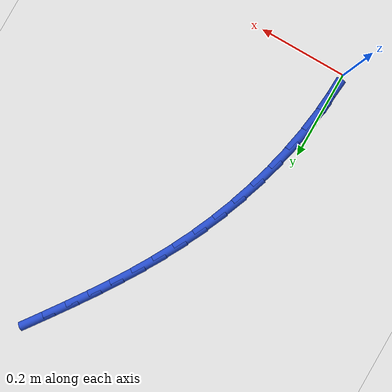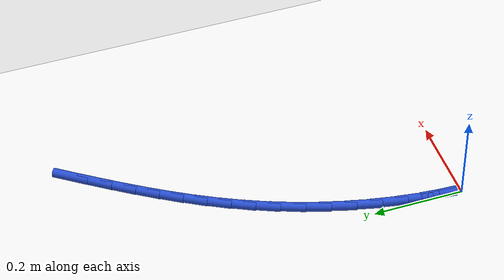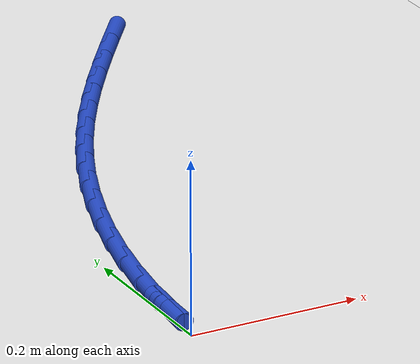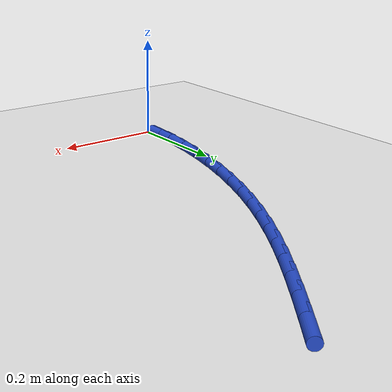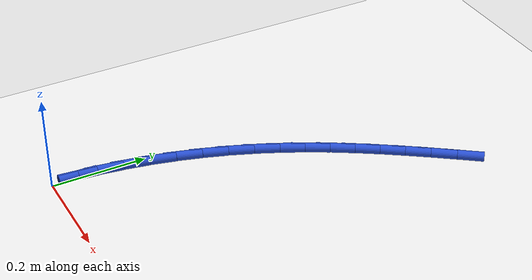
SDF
<sdf version="1.6">
 <world name="default">
  <model name="ground_plane">
   <static>1</static>
   <link name="link">
    <collision name="collision">
     <geometry><plane><normal>0 0 1</normal><size>100 100</size></plane></geometry>
     <surface><friction><ode><mu>100</mu><mu2>50</mu2></ode></friction></surface>
    </collision>
    <visual name="visual">
     <cast_shadows>0</cast_shadows>
     <geometry><plane><normal>0 0 1</normal><size>100 100</size></plane></geometry>
     <material>
      <script><uri>file://media/materials/scripts/gazebo.material</uri><name>Gazebo/WhiteGlow</name></script>
     </material>
    </visual>
   </link>
  </model>
  <model name="line">
   <link name="link_1">
    <pose>0.0022075486330669406 0.054341350520344396 0.01 0 1.57 1.4746755640071965</pose>
    <collision name="collision">
     <geometry><cylinder><radius>0.01</radius><length>0.08</length></cylinder></geometry>
    </collision>
    <visual name="visual">
     <material>
      <script><name>Gazebo/Blue</name><uri>file://media/materials/scripts/gazebo.material</uri></script>
     </material>
     <geometry><cylinder><radius>0.01</radius><length>0.08</length></cylinder></geometry>
    </visual>
   </link>
   <link name="link_2">
    <pose>0.007438938822848464 0.10859881599953379 0.01 0 1.57 1.422006612447328</pose>
    <collision name="collision">
     <geometry><cylinder><radius>0.01</radius><length>0.08</length></cylinder></geometry>
    </collision>
    <visual name="visual">
     <material>
      <script><name>Gazebo/Blue</name><uri>file://media/materials/scripts/gazebo.material</uri></script>
     </material>
     <geometry><cylinder><radius>0.01</radius><length>0.08</length></cylinder></geometry>
    </visual>
   </link>
   <link name="link_3">
    <pose>0.015526090274731199 0.1625500209821812 0.01 0 1.57 1.3717756762877462</pose>
    <collision name="collision">
     <geometry><cylinder><radius>0.01</radius><length>0.08</length></cylinder></geometry>
    </collision>
    <visual name="visual">
     <material>
      <script><name>Gazebo/Blue</name><uri>file://media/materials/scripts/gazebo.material</uri></script>
     </material>
     <geometry><cylinder><radius>0.01</radius><length>0.08</length></cylinder></geometry>
    </visual>
   </link>
   <link name="link_4">
    <pose>0.026300922694101798 0.2159725900128996 0.01 0 1.57 1.3235577637473384</pose>
    <collision name="collision">
     <geometry><cylinder><radius>0.01</radius><length>0.08</length></cylinder></geometry>
    </collision>
    <visual name="visual">
     <material>
      <script><name>Gazebo/Blue</name><uri>file://media/materials/scripts/gazebo.material</uri></script>
     </material>
     <geometry><cylinder><radius>0.01</radius><length>0.08</length></cylinder></geometry>
    </visual>
   </link>
   <link name="link_5">
    <pose>0.03959535578634695 0.2686441476363022 0.01 0 1.57 1.2769189393205005</pose>
    <collision name="collision">
     <geometry><cylinder><radius>0.01</radius><length>0.08</length></cylinder></geometry>
    </collision>
    <visual name="visual">
     <material>
      <script><name>Gazebo/Blue</name><uri>file://media/materials/scripts/gazebo.material</uri></script>
     </material>
     <geometry><cylinder><radius>0.01</radius><length>0.08</length></cylinder></geometry>
    </visual>
   </link>
   <link name="link_6">
    <pose>0.055241309256853305 0.32034231839700195 0.01 0 1.57 1.2314154283046022</pose>
    <collision name="collision">
     <geometry><cylinder><radius>0.01</radius><length>0.08</length></cylinder></geometry>
    </collision>
    <visual name="visual">
     <material>
      <script><name>Gazebo/Blue</name><uri>file://media/materials/scripts/gazebo.material</uri></script>
     </material>
     <geometry><cylinder><radius>0.01</radius><length>0.08</length></cylinder></geometry>
    </visual>
   </link>
   <link name="link_7">
    <pose>0.0730707028110075 0.3708447268396117 0.01 0 1.57 1.1865888610625632</pose>
    <collision name="collision">
     <geometry><cylinder><radius>0.01</radius><length>0.08</length></cylinder></geometry>
    </collision>
    <visual name="visual">
     <material>
      <script><name>Gazebo/Blue</name><uri>file://media/materials/scripts/gazebo.material</uri></script>
     </material>
     <geometry><cylinder><radius>0.01</radius><length>0.08</length></cylinder></geometry>
    </visual>
   </link>
   <link name="link_8">
    <pose>0.09291545615419627 0.4199289975087449 0.01 0 1.57 1.1421388670999895</pose>
    <collision name="collision">
     <geometry><cylinder><radius>0.01</radius><length>0.08</length></cylinder></geometry>
    </collision>
    <visual name="visual">
     <material>
      <script><name>Gazebo/Blue</name><uri>file://media/materials/scripts/gazebo.material</uri></script>
     </material>
     <geometry><cylinder><radius>0.01</radius><length>0.08</length></cylinder></geometry>
    </visual>
   </link>
   <link name="link_9">
    <pose>0.11461238780194348 0.46740617316167077 0.01 0 1.57 1.0997445924066682</pose>
    <collision name="collision">
     <geometry><cylinder><radius>0.01</radius><length>0.08</length></cylinder></geometry>
    </collision>
    <visual name="visual">
     <material>
      <script><name>Gazebo/Blue</name><uri>file://media/materials/scripts/gazebo.material</uri></script>
     </material>
     <geometry><cylinder><radius>0.01</radius><length>0.08</length></cylinder></geometry>
    </visual>
   </link>
   <link name="link_10">
    <pose>0.13804722136117467 0.5134209124131082 0.01 0 1.57 1.0611752489337685</pose>
    <collision name="collision">
     <geometry><cylinder><radius>0.01</radius><length>0.08</length></cylinder></geometry>
    </collision>
    <visual name="visual">
     <material>
      <script><name>Gazebo/Blue</name><uri>file://media/materials/scripts/gazebo.material</uri></script>
     </material>
     <geometry><cylinder><radius>0.01</radius><length>0.08</length></cylinder></geometry>
    </visual>
   </link>
   <link name="link_11">
    <pose>0.16313379013094395 0.5583096297619466 0.01 0 1.57 1.0271878848807843</pose>
    <collision name="collision">
     <geometry><cylinder><radius>0.01</radius><length>0.08</length></cylinder></geometry>
    </collision>
    <visual name="visual">
     <material>
      <script><name>Gazebo/Blue</name><uri>file://media/materials/scripts/gazebo.material</uri></script>
     </material>
     <geometry><cylinder><radius>0.01</radius><length>0.08</length></cylinder></geometry>
    </visual>
   </link>
   <link name="link_12">
    <pose>0.18978626299362236 0.6024110289557577 0.01 0 1.57 0.9983243542576741</pose>
    <collision name="collision">
     <geometry><cylinder><radius>0.01</radius><length>0.08</length></cylinder></geometry>
    </collision>
    <visual name="visual">
     <material>
      <script><name>Gazebo/Blue</name><uri>file://media/materials/scripts/gazebo.material</uri></script>
     </material>
     <geometry><cylinder><radius>0.01</radius><length>0.08</length></cylinder></geometry>
    </visual>
   </link>
   <link name="link_13">
    <pose>0.2179188088315812 0.646063813742114 0.01 0 1.57 0.9749143127374696</pose>
    <collision name="collision">
     <geometry><cylinder><radius>0.01</radius><length>0.08</length></cylinder></geometry>
    </collision>
    <visual name="visual">
     <material>
      <script><name>Gazebo/Blue</name><uri>file://media/materials/scripts/gazebo.material</uri></script>
     </material>
     <geometry><cylinder><radius>0.01</radius><length>0.08</length></cylinder></geometry>
    </visual>
   </link>
   <link name="link_14">
    <pose>0.24744559652719156 0.6896066878685875 0.01 0 1.57 0.9570862462830854</pose>
    <collision name="collision">
     <geometry><cylinder><radius>0.01</radius><length>0.08</length></cylinder></geometry>
    </collision>
    <visual name="visual">
     <material>
      <script><name>Gazebo/Blue</name><uri>file://media/materials/scripts/gazebo.material</uri></script>
     </material>
     <geometry><cylinder><radius>0.01</radius><length>0.08</length></cylinder></geometry>
    </visual>
   </link>
   <link name="link_15">
    <pose>0.27828079496282465 0.7333783550827505 0.01 0 1.57 0.944791988539994</pose>
    <collision name="collision">
     <geometry><cylinder><radius>0.01</radius><length>0.08</length></cylinder></geometry>
    </collision>
    <visual name="visual">
     <material>
      <script><name>Gazebo/Blue</name><uri>file://media/materials/scripts/gazebo.material</uri></script>
     </material>
     <geometry><cylinder><radius>0.01</radius><length>0.08</length></cylinder></geometry>
    </visual>
   </link>
   <link name="link_16">
    <pose>0.3103385730208517 0.7777175191321752 0.01 0 1.57 0.9378377933495353</pose>
    <collision name="collision">
     <geometry><cylinder><radius>0.01</radius><length>0.08</length></cylinder></geometry>
    </collision>
    <visual name="visual">
     <material>
      <script><name>Gazebo/Blue</name><uri>file://media/materials/scripts/gazebo.material</uri></script>
     </material>
     <geometry><cylinder><radius>0.01</radius><length>0.08</length></cylinder></geometry>
    </visual>
   </link>
   <link name="link_141">
    <pose>0.0022449634347426507 0.054358055510014214 0.01 0 1.57 1.5295202299583701</pose>
    <collision name="collision">
     <geometry><cylinder><radius>0.01</radius><length>0.08</length></cylinder></geometry>
    </collision>
    <visual name="visual">
     <material>
      <script><name>Gazebo/Blue</name><uri>file://media/materials/scripts/gazebo.material</uri></script>
     </material>
     <geometry><cylinder><radius>0.01</radius><length>0.08</length></cylinder></geometry>
    </visual>
   </link>
  </model>
 </world>
</sdf>
